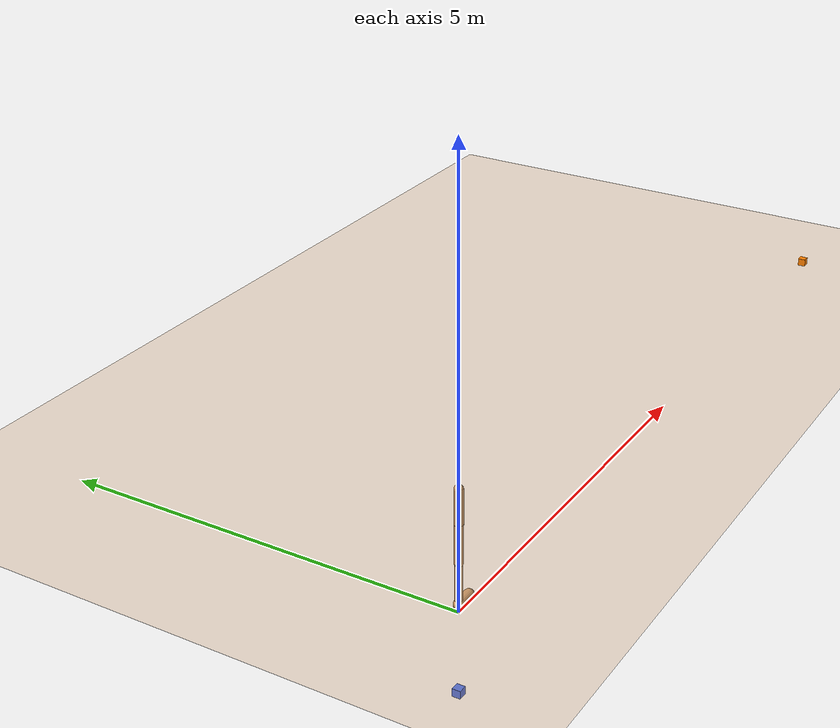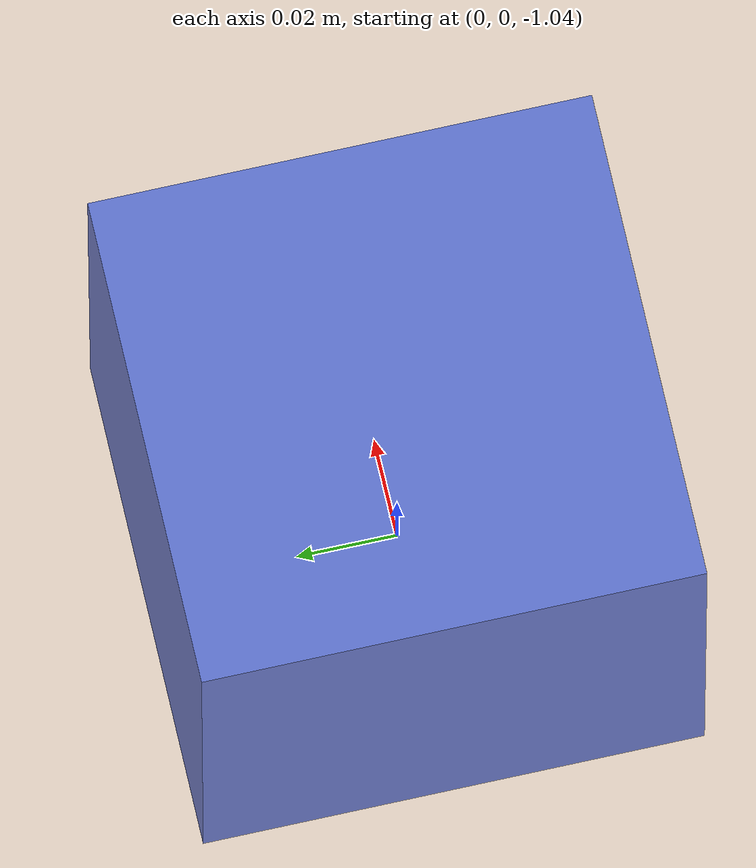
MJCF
<?xml version='1.0' encoding='utf-8'?>
<mujoco model="Walker2d_scene">
  <option timestep="0.002" />
  <include file="bot.xml" />
  <statistic extent="5" center="0 0 0" />
  <visual>
    <headlight ambient=".4 .4 .4" diffuse=".8 .8 .8" specular="0.1 0.1 0.1" />
    <map znear="0.01" />
    <quality shadowsize="2048" />
  </visual>
  <asset>
    <texture type="skybox" builtin="gradient" rgb1="0.3 0.5 0.7" rgb2="0 0 0" width="512" height="3072" />
    <texture type="2d" name="groundplane" builtin="checker" mark="edge" rgb1="0.2 0.3 0.4" rgb2="0.1 0.2 0.3" markrgb="0.8 0.8 0.8" width="300" height="300" />
    <material name="groundplane" texture="groundplane" texuniform="true" texrepeat="5 5" reflectance="0.2" />
  </asset>
  <worldbody>
    <light directional="true" diffuse=".8 .8 .8" pos="0 0 10" dir="0 0 -1" />
    <geom name="floor" type="plane" size="50 50 0.1" material="groundplane" conaffinity="1" />
    <!-- Target (placed far in +X for walking stage — Walker2d walks in +X) -->
    <body name="target" mocap="true" pos="10 0 0.08">
      <geom name="target_cube" type="box" size="0.05 0.05 0.05" rgba="1.0 0.5 0.0 1.0" contype="0" conaffinity="0" />
    </body>
    <body name="distractor_0" mocap="true" pos="0 0 -1">
      <geom name="distractor_0_cube" type="box" size="0.05 0.05 0.05" rgba="0.2 0.4 1.0 1.0" contype="0" conaffinity="0" />
    </body>
    <body name="distractor_1" mocap="true" pos="0 0 -1">
      <geom name="distractor_1_cube" type="box" size="0.05 0.05 0.05" rgba="0.2 0.9 0.3 1.0" contype="0" conaffinity="0" />
    </body>
    <body name="distractor_2" mocap="true" pos="0 0 -1">
      <geom name="distractor_2_cube" type="box" size="0.05 0.05 0.05" rgba="0.9 0.2 0.2 1.0" contype="0" conaffinity="0" />
    </body>
    <body name="distractor_3" mocap="true" pos="0 0 -1">
      <geom name="distractor_3_cube" type="box" size="0.05 0.05 0.05" rgba="0.7 0.3 0.9 1.0" contype="0" conaffinity="0" />
    </body>
  </worldbody>
</mujoco>

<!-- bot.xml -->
<mujoco model="Walker2d">
  <compiler angle="radian" inertiafromgeom="true" />

  <default>
    <joint armature="0.01" damping="0.1" limited="true" />
    <geom conaffinity="0" condim="3" contype="1" density="1000"
          friction="0.7 0.1 0.1" rgba="0.8 0.6 0.4 1" />
  </default>

  <option integrator="RK4" />

  <worldbody>
    <body name="base" pos="0 0 1.25">
      <!-- IMU site for gyro/accelerometer sensors (at body origin) -->
      <site name="imu" pos="0 0 0" />

      <!-- Body-mounted camera (pointing +X = forward for Walker2d) -->
      <camera name="camera_1_cam" fovy="90.0"
              pos="0 0 0.20" xyaxes="0 -1 0 0 0 1" />

      <!-- Root joints: free 2D movement (slide X, slide Z, rotate Y) -->
      <joint armature="0" axis="1 0 0" damping="0" limited="false"
             name="rootx" pos="0 0 0" stiffness="0" type="slide" />
      <joint armature="0" axis="0 0 1" damping="0" limited="false"
             name="rootz" pos="0 0 0" ref="1.25" stiffness="0" type="slide" />
      <joint armature="0" axis="0 1 0" damping="0" limited="false"
             name="rooty" pos="0 0 0" stiffness="0" type="hinge" />

      <geom friction="0.9" fromto="0 0 0.20 0 0 -0.20"
            name="torso_geom" size="0.05" type="capsule" />

      <!-- Right leg -->
      <body name="thigh" pos="0 0 -0.20">
        <joint axis="0 -1 0" name="thigh_joint" pos="0 0 0"
               range="-2.618 0" type="hinge" />
        <geom friction="0.9" fromto="0 0 0 0 0 -0.45"
              name="thigh_geom" size="0.05" type="capsule" />

        <body name="leg" pos="0 0 -0.70">
          <joint axis="0 -1 0" name="leg_joint" pos="0 0 0.25"
                 range="-2.618 0" type="hinge" />
          <geom friction="0.9" fromto="0 0 0.25 0 0 -0.25"
                name="leg_geom" size="0.04" type="capsule" />

          <body name="foot" pos="0.2 0 -0.25">
            <joint axis="0 -1 0" name="foot_joint" pos="-0.2 0 0"
                   range="-0.785 0.785" type="hinge" />
            <geom friction="0.9" fromto="-0.2 0 0 0 0 0"
                  name="right_foot" size="0.06" type="capsule" />
          </body>
        </body>
      </body>

      <!-- Left leg -->
      <body name="thigh_left" pos="0 0 -0.20">
        <joint axis="0 -1 0" name="thigh_left_joint" pos="0 0 0"
               range="-2.618 0" type="hinge" />
        <geom friction="0.9" fromto="0 0 0 0 0 -0.45"
              name="thigh_left_geom" size="0.05" type="capsule" />

        <body name="leg_left" pos="0 0 -0.70">
          <joint axis="0 -1 0" name="leg_left_joint" pos="0 0 0.25"
                 range="-2.618 0" type="hinge" />
          <geom friction="0.9" fromto="0 0 0.25 0 0 -0.25"
                name="leg_left_geom" size="0.04" type="capsule" />

          <body name="foot_left" pos="0.2 0 -0.25">
            <joint axis="0 -1 0" name="foot_left_joint" pos="-0.2 0 0"
                   range="-0.785 0.785" type="hinge" />
            <geom friction="0.9" fromto="-0.2 0 0 0 0 0"
                  name="left_foot" size="0.06" type="capsule" />
          </body>
        </body>
      </body>
    </body>
  </worldbody>

  <contact>
    <!-- Exclude adjacent body pairs from collision -->
    <exclude body1="base" body2="thigh" />
    <exclude body1="base" body2="thigh_left" />
    <exclude body1="thigh" body2="leg" />
    <exclude body1="leg" body2="foot" />
    <exclude body1="thigh_left" body2="leg_left" />
    <exclude body1="leg_left" body2="foot_left" />
    <!-- Exclude overlapping left/right thighs -->
    <exclude body1="thigh" body2="thigh_left" />
  </contact>

  <actuator>
    <!-- Torque motors (canonical Walker2d control) -->
    <motor name="thigh_motor" ctrllimited="true" ctrlrange="-1.0 1.0"
           gear="100" joint="thigh_joint" />
    <motor name="leg_motor" ctrllimited="true" ctrlrange="-1.0 1.0"
           gear="100" joint="leg_joint" />
    <motor name="foot_motor" ctrllimited="true" ctrlrange="-1.0 1.0"
           gear="100" joint="foot_joint" />
    <motor name="thigh_left_motor" ctrllimited="true" ctrlrange="-1.0 1.0"
           gear="100" joint="thigh_left_joint" />
    <motor name="leg_left_motor" ctrllimited="true" ctrlrange="-1.0 1.0"
           gear="100" joint="leg_left_joint" />
    <motor name="foot_left_motor" ctrllimited="true" ctrlrange="-1.0 1.0"
           gear="100" joint="foot_left_joint" />
  </actuator>

  <sensor>
    <!-- Joint position sensors (6) -->
    <jointpos name="thigh_pos" joint="thigh_joint" />
    <jointpos name="leg_pos" joint="leg_joint" />
    <jointpos name="foot_pos" joint="foot_joint" />
    <jointpos name="thigh_left_pos" joint="thigh_left_joint" />
    <jointpos name="leg_left_pos" joint="leg_left_joint" />
    <jointpos name="foot_left_pos" joint="foot_left_joint" />
    <!-- Joint velocity sensors (6) -->
    <jointvel name="thigh_vel" joint="thigh_joint" />
    <jointvel name="leg_vel" joint="leg_joint" />
    <jointvel name="foot_vel" joint="foot_joint" />
    <jointvel name="thigh_left_vel" joint="thigh_left_joint" />
    <jointvel name="leg_left_vel" joint="leg_left_joint" />
    <jointvel name="foot_left_vel" joint="foot_left_joint" />
    <!-- IMU sensors (3 + 3 = 6) -->
    <gyro name="torso_gyro" site="imu" />
    <accelerometer name="torso_accel" site="imu" />
  </sensor>
</mujoco>
